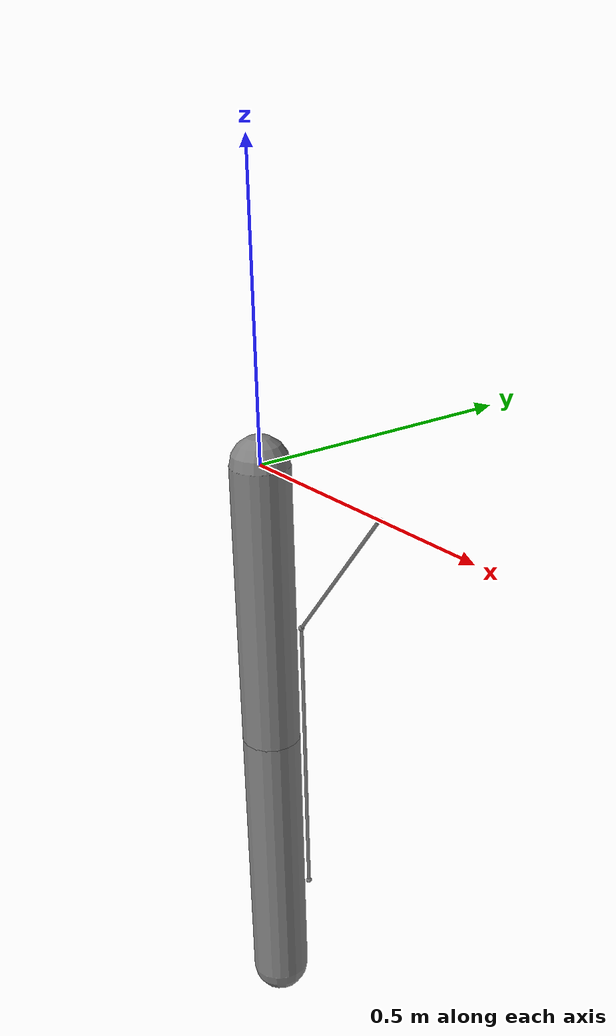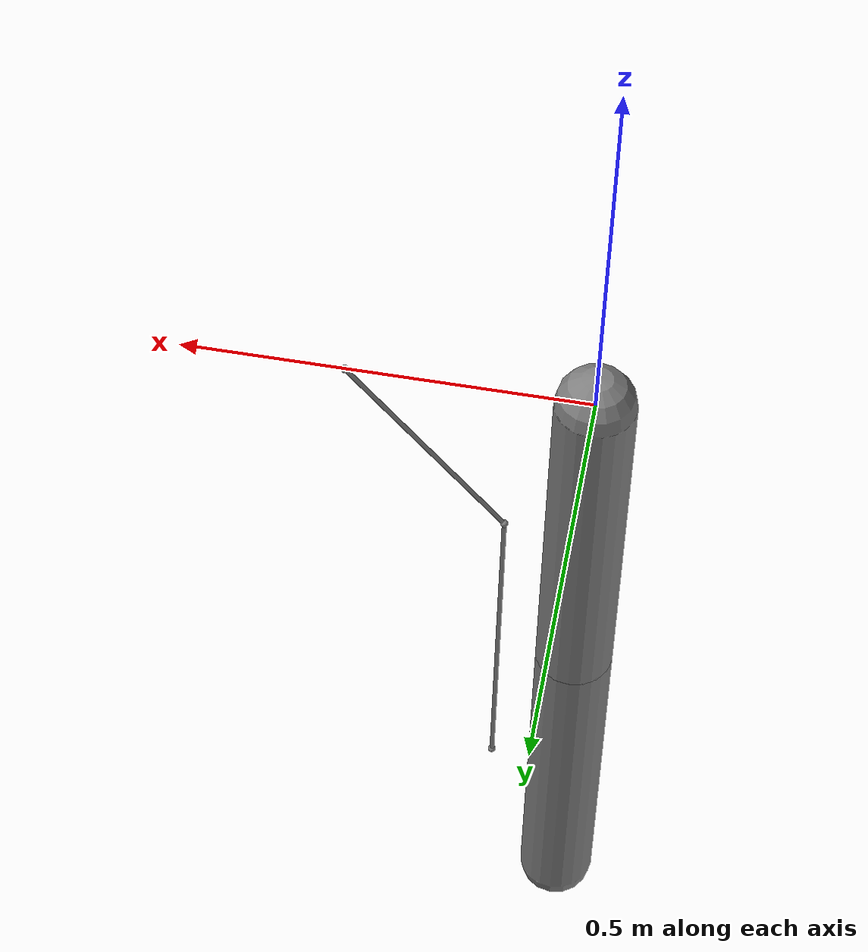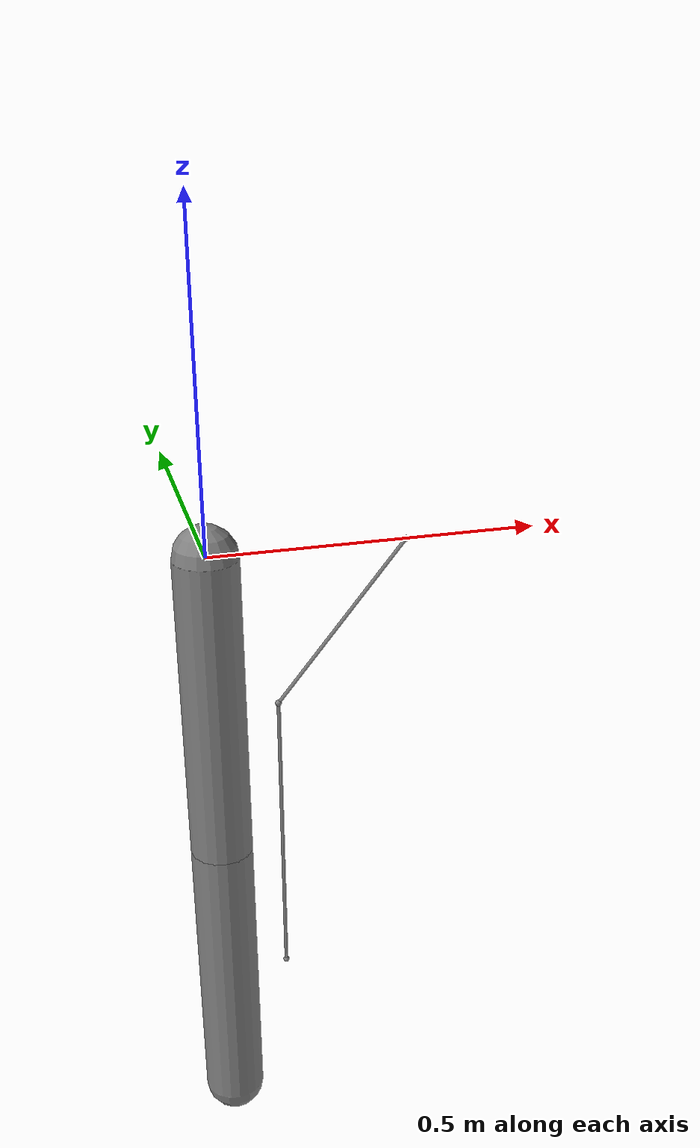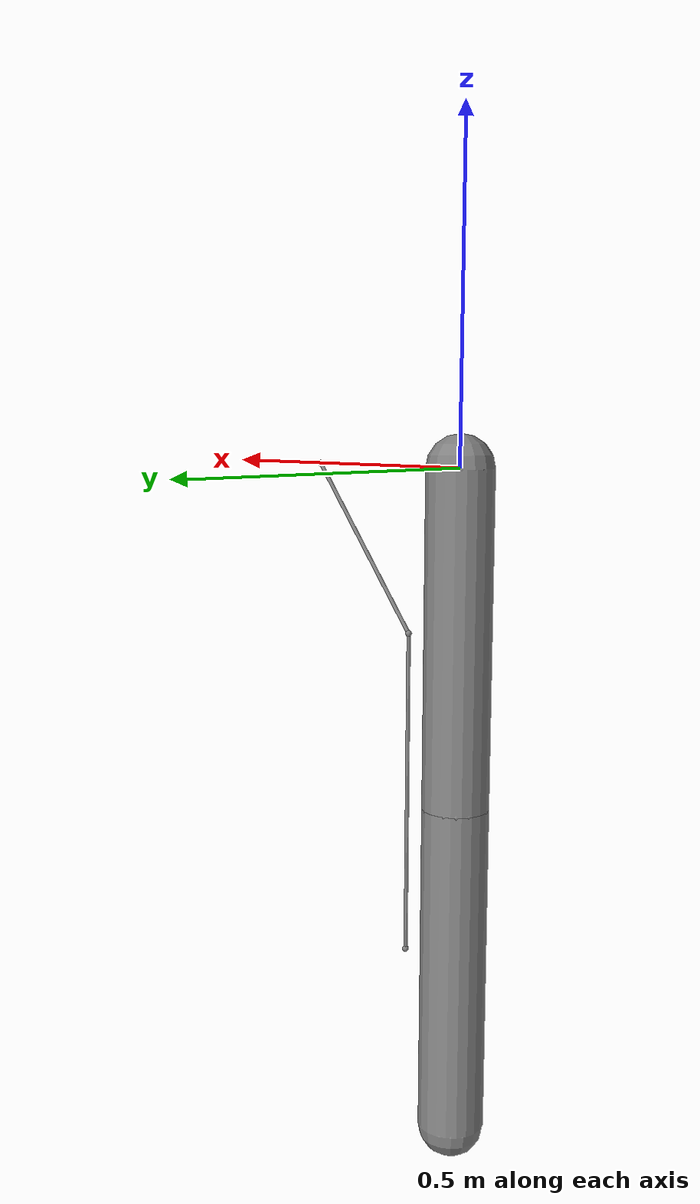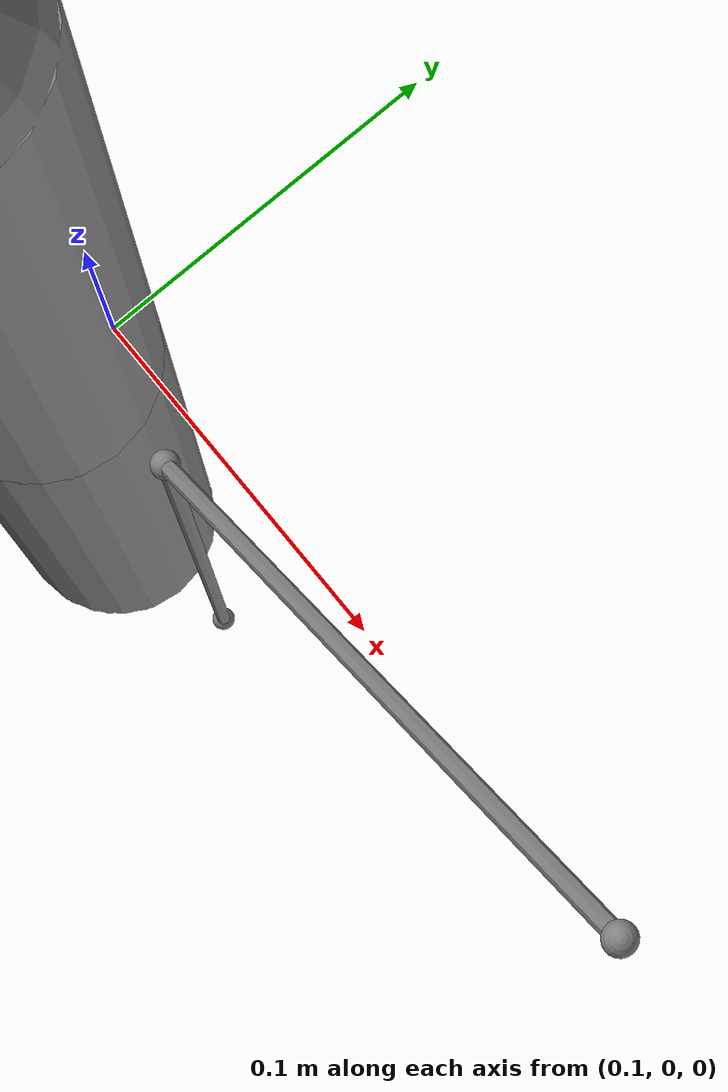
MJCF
<mujoco model="tendon_spatial_impl">
            <option timestep="0.001" integrator="implicitspringdamper" gravity="0 0 0"/>
            <worldbody>
                <body name="b1" pos="0 0 0">
                    <joint name="j0" type="hinge" axis="0 1 0"
                           stiffness="0" damping="0"/>
                    <geom name="g0" type="capsule" fromto="0 0 0 0 0 -0.5" size="0.05" mass="1.0"/>
                    <site name="s0" pos="0.1 0 -0.25"/>
                    <body name="b2" pos="0 0 -0.5">
                        <joint name="j1" type="hinge" axis="0 1 0"
                               stiffness="0" damping="0"/>
                        <geom name="g1" type="capsule" fromto="0 0 0 0 0 -0.5" size="0.05" mass="1.0"/>
                        <site name="s1" pos="0.1 0 -0.25"/>
                    </body>
                </body>
                <site name="s_world" pos="0.3 0 0"/>
            </worldbody>
            <tendon>
                <spatial name="sp0" stiffness="50.0" damping="10.0"
                         springlength="0 0">
                    <site site="s_world"/>
                    <site site="s0"/>
                    <site site="s1"/>
                </spatial>
            </tendon>
        </mujoco>
